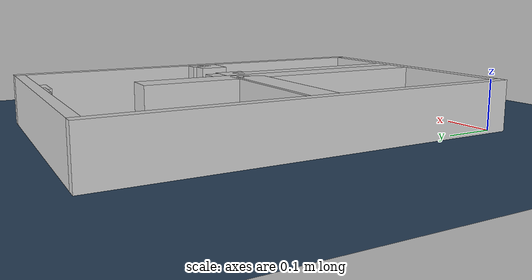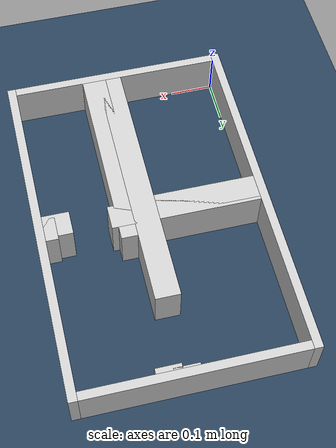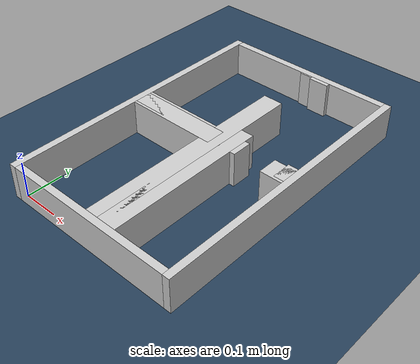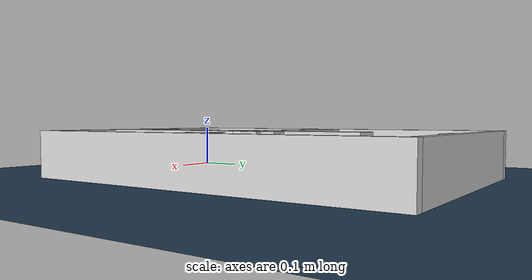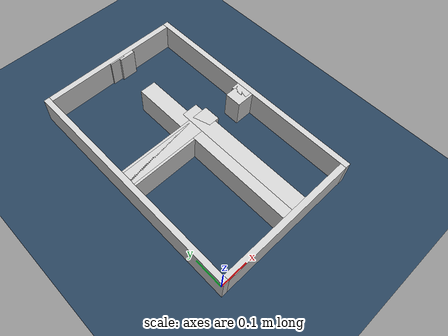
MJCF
<?xml version="1.0" ?>
<mujoco model="generated_real_template">
  <compiler angle="degree"/>
  <option timestep="0.002" integrator="implicitfast" iterations="100" cone="elliptic"/>
  <default>
    <geom density="1"/>
  </default>
  <asset>
    <texture builtin="gradient" height="3072" rgb1="0.3 0.5 0.7" rgb2="0 0 0" type="skybox" width="512"/>
    <texture builtin="checker" height="300" mark="edge" markrgb="0.8 0.8 0.8" name="groundplane" rgb1="0.2 0.3 0.4" rgb2="0.1 0.2 0.3" type="2d" width="300"/>
    <material name="groundplane" reflectance="0.2" texrepeat="5 5" texture="groundplane" texuniform="true"/>
  </asset>
  <worldbody>
    <light dir="0 0 -1" directional="true" pos="0 0 1.5"/>
    <geom name="floor" type="plane" condim="4" friction="0.5 0.005 0.001" material="groundplane" size="0 0 0.05"/>
    <body name="walls">
      <geom name="wall_boundary_left" type="box" condim="4" friction="1.0 0.005 0.0001" rgba="0.8 0.8 0.8 1" pos="-0.010000 0.387500 0.050000" euler="0 0 0.000000" size="0.010000 0.407500 0.050000"/>
      <geom name="wall_boundary_right" type="box" condim="4" friction="1.0 0.005 0.0001" rgba="0.8 0.8 0.8 1" pos="0.500000 0.387500 0.050000" euler="0 0 0.000000" size="0.010000 0.407500 0.050000"/>
      <geom name="wall_boundary_bottom" type="box" condim="4" friction="1.0 0.005 0.0001" rgba="0.8 0.8 0.8 1" pos="0.245000 -0.010000 0.050000" euler="0 0 0.000000" size="0.245000 0.010000 0.050000"/>
      <geom name="wall_boundary_top" type="box" condim="4" friction="1.0 0.005 0.0001" rgba="0.8 0.8 0.8 1" pos="0.245000 0.785000 0.050000" euler="0 0 0.000000" size="0.245000 0.010000 0.050000"/>
      <geom name="wall_inner_1_1" type="box" condim="4" friction="1.0 0.005 0.0001" rgba="0.8 0.8 0.8 1" pos="0.171219 0.392062 0.050000" euler="0 0 0.000000" size="0.171219 0.028500 0.050000"/>
      <geom name="wall_inner_1_2" type="box" condim="4" friction="1.0 0.005 0.0001" rgba="0.8 0.8 0.8 1" pos="0.475746 0.392062 0.050000" euler="0 0 0.000000" size="0.014254 0.028500 0.050000"/>
      <geom name="wall_inner_2_1" type="box" condim="4" friction="1.0 0.005 0.0001" rgba="0.8 0.8 0.8 1" pos="0.131504 0.384268 0.050000" euler="0 0 0.000000" size="0.131504 0.028500 0.050000"/>
      <geom name="wall_inner_2_2" type="box" condim="4" friction="1.0 0.005 0.0001" rgba="0.8 0.8 0.8 1" pos="0.458593 0.384268 0.050000" euler="0 0 0.000000" size="0.031407 0.028500 0.050000"/>
      <geom name="wall_inner_3_1" type="box" condim="4" friction="1.0 0.005 0.0001" rgba="0.8 0.8 0.8 1" pos="0.299173 0.225356 0.050000" euler="0 0 90.000000" size="0.225356 0.028500 0.050000"/>
      <geom name="wall_inner_3_2" type="box" condim="4" friction="1.0 0.005 0.0001" rgba="0.8 0.8 0.8 1" pos="0.299173 0.768899 0.050000" euler="0 0 90.000000" size="0.006101 0.028500 0.050000"/>
      <geom name="wall_inner_4_1" type="box" condim="4" friction="1.0 0.005 0.0001" rgba="0.8 0.8 0.8 1" pos="0.261978 0.306038 0.050000" euler="0 0 90.000000" size="0.306038 0.028500 0.050000"/>
      <geom name="wall_inner_4_2" type="box" condim="4" friction="1.0 0.005 0.0001" rgba="0.8 0.8 0.8 1" pos="0.261978 0.772724 0.050000" euler="0 0 90.000000" size="0.002276 0.028500 0.050000"/>
    </body>
  </worldbody>
</mujoco>
